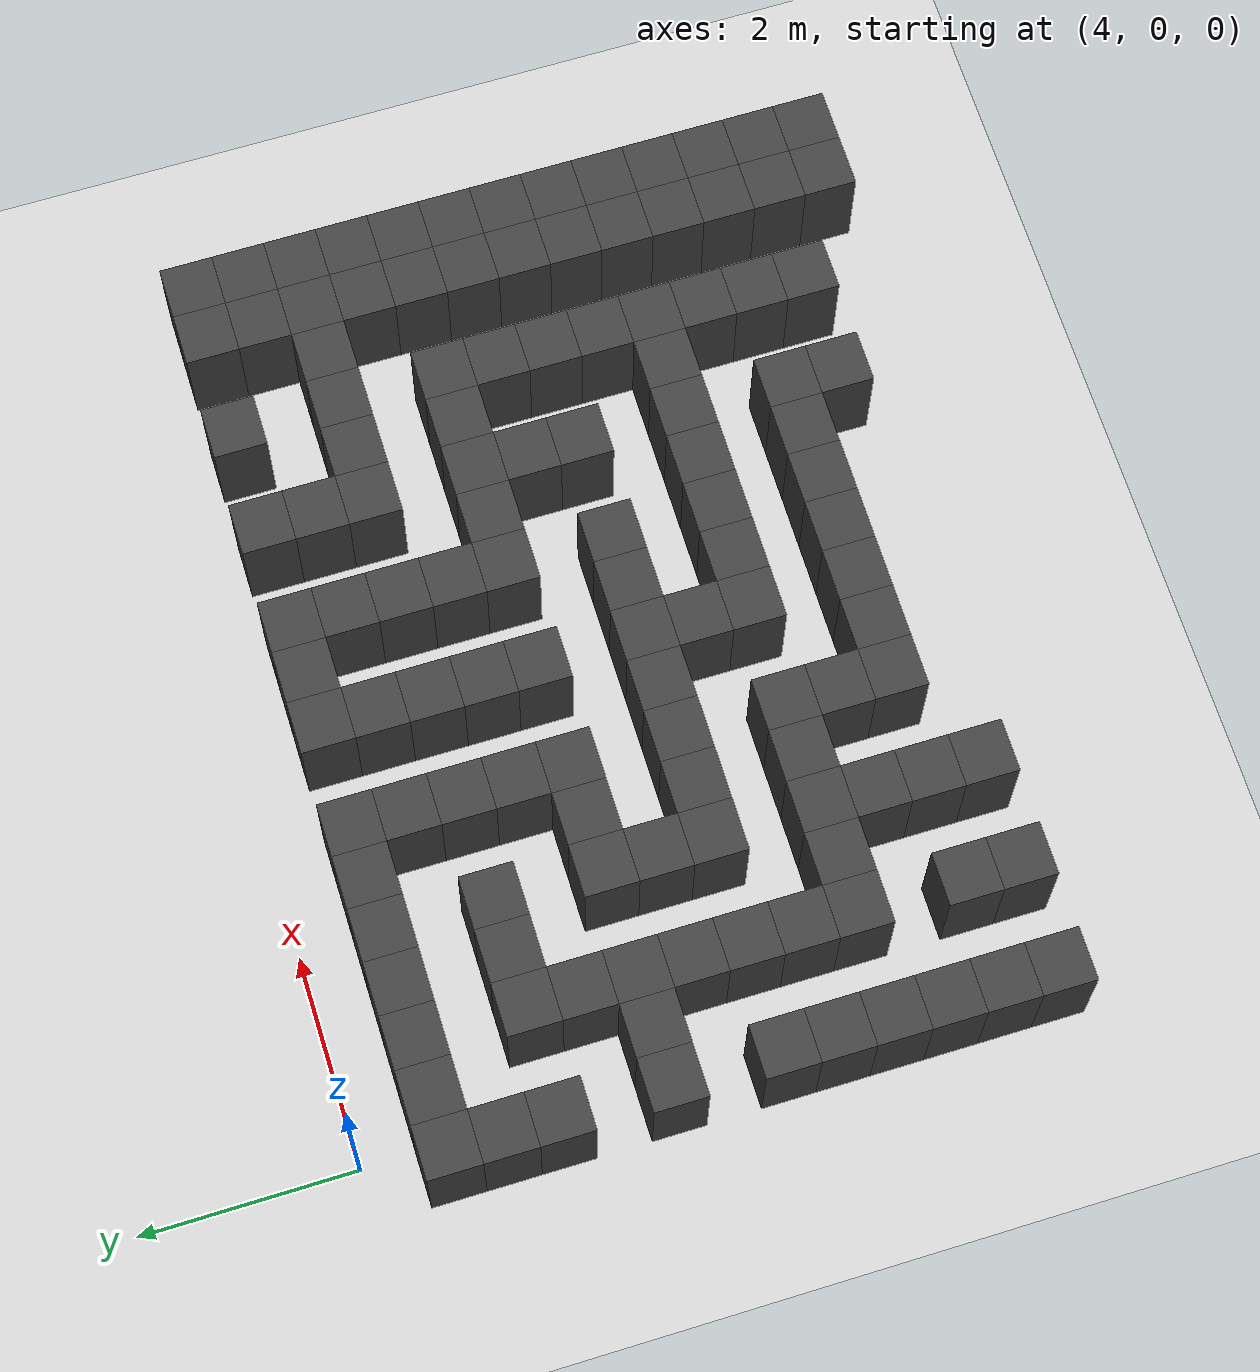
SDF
<sdf version="1.7">
 <world name="map_19815">
  <model name="ground_plane">
   <static>true</static>
   <link name="link">
    <collision name="collision">
     <geometry><plane><normal>0 0 1</normal><size>200 200</size></plane></geometry>
    </collision>
    <visual name="visual">
     <geometry><plane><normal>0 0 1</normal><size>200 200</size></plane></geometry>
     <material><ambient>0.8 0.8 0.8 1</ambient><diffuse>0.8 0.8 0.8 1</diffuse></material>
    </visual>
   </link>
  </model>
  <model name="maze_environment">
   <static>true</static>
   <link name="wall_699">
    <pose>3.750 -0.750 0.500 0 0 0</pose>
    <collision name="col"><geometry><box><size>0.5 0.5 1.0</size></box></geometry></collision>
    <visual name="vis">
     <geometry><box><size>0.5 0.5 1.0</size></box></geometry>
     <material><ambient>0.15 0.15 0.15 1</ambient><diffuse>0.25 0.25 0.25 1</diffuse></material>
    </visual>
   </link>
   <link name="wall_700">
    <pose>4.250 -0.750 0.500 0 0 0</pose>
    <collision name="col"><geometry><box><size>0.5 0.5 1.0</size></box></geometry></collision>
    <visual name="vis">
     <geometry><box><size>0.5 0.5 1.0</size></box></geometry>
     <material><ambient>0.15 0.15 0.15 1</ambient><diffuse>0.25 0.25 0.25 1</diffuse></material>
    </visual>
   </link>
   <link name="wall_701">
    <pose>4.750 -0.750 0.500 0 0 0</pose>
    <collision name="col"><geometry><box><size>0.5 0.5 1.0</size></box></geometry></collision>
    <visual name="vis">
     <geometry><box><size>0.5 0.5 1.0</size></box></geometry>
     <material><ambient>0.15 0.15 0.15 1</ambient><diffuse>0.25 0.25 0.25 1</diffuse></material>
    </visual>
   </link>
   <link name="wall_702">
    <pose>5.250 -0.750 0.500 0 0 0</pose>
    <collision name="col"><geometry><box><size>0.5 0.5 1.0</size></box></geometry></collision>
    <visual name="vis">
     <geometry><box><size>0.5 0.5 1.0</size></box></geometry>
     <material><ambient>0.15 0.15 0.15 1</ambient><diffuse>0.25 0.25 0.25 1</diffuse></material>
    </visual>
   </link>
   <link name="wall_703">
    <pose>5.750 -0.750 0.500 0 0 0</pose>
    <collision name="col"><geometry><box><size>0.5 0.5 1.0</size></box></geometry></collision>
    <visual name="vis">
     <geometry><box><size>0.5 0.5 1.0</size></box></geometry>
     <material><ambient>0.15 0.15 0.15 1</ambient><diffuse>0.25 0.25 0.25 1</diffuse></material>
    </visual>
   </link>
   <link name="wall_704">
    <pose>6.250 -0.750 0.500 0 0 0</pose>
    <collision name="col"><geometry><box><size>0.5 0.5 1.0</size></box></geometry></collision>
    <visual name="vis">
     <geometry><box><size>0.5 0.5 1.0</size></box></geometry>
     <material><ambient>0.15 0.15 0.15 1</ambient><diffuse>0.25 0.25 0.25 1</diffuse></material>
    </visual>
   </link>
   <link name="wall_705">
    <pose>6.750 -0.750 0.500 0 0 0</pose>
    <collision name="col"><geometry><box><size>0.5 0.5 1.0</size></box></geometry></collision>
    <visual name="vis">
     <geometry><box><size>0.5 0.5 1.0</size></box></geometry>
     <material><ambient>0.15 0.15 0.15 1</ambient><diffuse>0.25 0.25 0.25 1</diffuse></material>
    </visual>
   </link>
   <link name="wall_706">
    <pose>7.750 -0.750 0.500 0 0 0</pose>
    <collision name="col"><geometry><box><size>0.5 0.5 1.0</size></box></geometry></collision>
    <visual name="vis">
     <geometry><box><size>0.5 0.5 1.0</size></box></geometry>
     <material><ambient>0.15 0.15 0.15 1</ambient><diffuse>0.25 0.25 0.25 1</diffuse></material>
    </visual>
   </link>
   <link name="wall_707">
    <pose>8.250 -0.750 0.500 0 0 0</pose>
    <collision name="col"><geometry><box><size>0.5 0.5 1.0</size></box></geometry></collision>
    <visual name="vis">
     <geometry><box><size>0.5 0.5 1.0</size></box></geometry>
     <material><ambient>0.15 0.15 0.15 1</ambient><diffuse>0.25 0.25 0.25 1</diffuse></material>
    </visual>
   </link>
   <link name="wall_708">
    <pose>8.750 -0.750 0.500 0 0 0</pose>
    <collision name="col"><geometry><box><size>0.5 0.5 1.0</size></box></geometry></collision>
    <visual name="vis">
     <geometry><box><size>0.5 0.5 1.0</size></box></geometry>
     <material><ambient>0.15 0.15 0.15 1</ambient><diffuse>0.25 0.25 0.25 1</diffuse></material>
    </visual>
   </link>
   <link name="wall_709">
    <pose>9.750 -0.750 0.500 0 0 0</pose>
    <collision name="col"><geometry><box><size>0.5 0.5 1.0</size></box></geometry></collision>
    <visual name="vis">
     <geometry><box><size>0.5 0.5 1.0</size></box></geometry>
     <material><ambient>0.15 0.15 0.15 1</ambient><diffuse>0.25 0.25 0.25 1</diffuse></material>
    </visual>
   </link>
   <link name="wall_710">
    <pose>10.750 -0.750 0.500 0 0 0</pose>
    <collision name="col"><geometry><box><size>0.5 0.5 1.0</size></box></geometry></collision>
    <visual name="vis">
     <geometry><box><size>0.5 0.5 1.0</size></box></geometry>
     <material><ambient>0.15 0.15 0.15 1</ambient><diffuse>0.25 0.25 0.25 1</diffuse></material>
    </visual>
   </link>
   <link name="wall_711">
    <pose>11.750 -0.750 0.500 0 0 0</pose>
    <collision name="col"><geometry><box><size>0.5 0.5 1.0</size></box></geometry></collision>
    <visual name="vis">
     <geometry><box><size>0.5 0.5 1.0</size></box></geometry>
     <material><ambient>0.15 0.15 0.15 1</ambient><diffuse>0.25 0.25 0.25 1</diffuse></material>
    </visual>
   </link>
   <link name="wall_712">
    <pose>12.250 -0.750 0.500 0 0 0</pose>
    <collision name="col"><geometry><box><size>0.5 0.5 1.0</size></box></geometry></collision>
    <visual name="vis">
     <geometry><box><size>0.5 0.5 1.0</size></box></geometry>
     <material><ambient>0.15 0.15 0.15 1</ambient><diffuse>0.25 0.25 0.25 1</diffuse></material>
    </visual>
   </link>
   <link name="wall_723">
    <pose>3.750 -1.250 0.500 0 0 0</pose>
    <collision name="col"><geometry><box><size>0.5 0.5 1.0</size></box></geometry></collision>
    <visual name="vis">
     <geometry><box><size>0.5 0.5 1.0</size></box></geometry>
     <material><ambient>0.15 0.15 0.15 1</ambient><diffuse>0.25 0.25 0.25 1</diffuse></material>
    </visual>
   </link>
   <link name="wall_724">
    <pose>6.750 -1.250 0.500 0 0 0</pose>
    <collision name="col"><geometry><box><size>0.5 0.5 1.0</size></box></geometry></collision>
    <visual name="vis">
     <geometry><box><size>0.5 0.5 1.0</size></box></geometry>
     <material><ambient>0.15 0.15 0.15 1</ambient><diffuse>0.25 0.25 0.25 1</diffuse></material>
    </visual>
   </link>
   <link name="wall_725">
    <pose>7.750 -1.250 0.500 0 0 0</pose>
    <collision name="col"><geometry><box><size>0.5 0.5 1.0</size></box></geometry></collision>
    <visual name="vis">
     <geometry><box><size>0.5 0.5 1.0</size></box></geometry>
     <material><ambient>0.15 0.15 0.15 1</ambient><diffuse>0.25 0.25 0.25 1</diffuse></material>
    </visual>
   </link>
   <link name="wall_726">
    <pose>8.750 -1.250 0.500 0 0 0</pose>
    <collision name="col"><geometry><box><size>0.5 0.5 1.0</size></box></geometry></collision>
    <visual name="vis">
     <geometry><box><size>0.5 0.5 1.0</size></box></geometry>
     <material><ambient>0.15 0.15 0.15 1</ambient><diffuse>0.25 0.25 0.25 1</diffuse></material>
    </visual>
   </link>
   <link name="wall_727">
    <pose>9.750 -1.250 0.500 0 0 0</pose>
    <collision name="col"><geometry><box><size>0.5 0.5 1.0</size></box></geometry></collision>
    <visual name="vis">
     <geometry><box><size>0.5 0.5 1.0</size></box></geometry>
     <material><ambient>0.15 0.15 0.15 1</ambient><diffuse>0.25 0.25 0.25 1</diffuse></material>
    </visual>
   </link>
   <link name="wall_728">
    <pose>11.750 -1.250 0.500 0 0 0</pose>
    <collision name="col"><geometry><box><size>0.5 0.5 1.0</size></box></geometry></collision>
    <visual name="vis">
     <geometry><box><size>0.5 0.5 1.0</size></box></geometry>
     <material><ambient>0.15 0.15 0.15 1</ambient><diffuse>0.25 0.25 0.25 1</diffuse></material>
    </visual>
   </link>
   <link name="wall_729">
    <pose>12.250 -1.250 0.500 0 0 0</pose>
    <collision name="col"><geometry><box><size>0.5 0.5 1.0</size></box></geometry></collision>
    <visual name="vis">
     <geometry><box><size>0.5 0.5 1.0</size></box></geometry>
     <material><ambient>0.15 0.15 0.15 1</ambient><diffuse>0.25 0.25 0.25 1</diffuse></material>
    </visual>
   </link>
   <link name="wall_753">
    <pose>3.750 -1.750 0.500 0 0 0</pose>
    <collision name="col"><geometry><box><size>0.5 0.5 1.0</size></box></geometry></collision>
    <visual name="vis">
     <geometry><box><size>0.5 0.5 1.0</size></box></geometry>
     <material><ambient>0.15 0.15 0.15 1</ambient><diffuse>0.25 0.25 0.25 1</diffuse></material>
    </visual>
   </link>
   <link name="wall_754">
    <pose>4.750 -1.750 0.500 0 0 0</pose>
    <collision name="col"><geometry><box><size>0.5 0.5 1.0</size></box></geometry></collision>
    <visual name="vis">
     <geometry><box><size>0.5 0.5 1.0</size></box></geometry>
     <material><ambient>0.15 0.15 0.15 1</ambient><diffuse>0.25 0.25 0.25 1</diffuse></material>
    </visual>
   </link>
   <link name="wall_755">
    <pose>5.250 -1.750 0.500 0 0 0</pose>
    <collision name="col"><geometry><box><size>0.5 0.5 1.0</size></box></geometry></collision>
    <visual name="vis">
     <geometry><box><size>0.5 0.5 1.0</size></box></geometry>
     <material><ambient>0.15 0.15 0.15 1</ambient><diffuse>0.25 0.25 0.25 1</diffuse></material>
    </visual>
   </link>
   <link name="wall_756">
    <pose>5.750 -1.750 0.500 0 0 0</pose>
    <collision name="col"><geometry><box><size>0.5 0.5 1.0</size></box></geometry></collision>
    <visual name="vis">
     <geometry><box><size>0.5 0.5 1.0</size></box></geometry>
     <material><ambient>0.15 0.15 0.15 1</ambient><diffuse>0.25 0.25 0.25 1</diffuse></material>
    </visual>
   </link>
   <link name="wall_757">
    <pose>6.750 -1.750 0.500 0 0 0</pose>
    <collision name="col"><geometry><box><size>0.5 0.5 1.0</size></box></geometry></collision>
    <visual name="vis">
     <geometry><box><size>0.5 0.5 1.0</size></box></geometry>
     <material><ambient>0.15 0.15 0.15 1</ambient><diffuse>0.25 0.25 0.25 1</diffuse></material>
    </visual>
   </link>
   <link name="wall_758">
    <pose>7.750 -1.750 0.500 0 0 0</pose>
    <collision name="col"><geometry><box><size>0.5 0.5 1.0</size></box></geometry></collision>
    <visual name="vis">
     <geometry><box><size>0.5 0.5 1.0</size></box></geometry>
     <material><ambient>0.15 0.15 0.15 1</ambient><diffuse>0.25 0.25 0.25 1</diffuse></material>
    </visual>
   </link>
   <link name="wall_759">
    <pose>8.750 -1.750 0.500 0 0 0</pose>
    <collision name="col"><geometry><box><size>0.5 0.5 1.0</size></box></geometry></collision>
    <visual name="vis">
     <geometry><box><size>0.5 0.5 1.0</size></box></geometry>
     <material><ambient>0.15 0.15 0.15 1</ambient><diffuse>0.25 0.25 0.25 1</diffuse></material>
    </visual>
   </link>
   <link name="wall_760">
    <pose>9.750 -1.750 0.500 0 0 0</pose>
    <collision name="col"><geometry><box><size>0.5 0.5 1.0</size></box></geometry></collision>
    <visual name="vis">
     <geometry><box><size>0.5 0.5 1.0</size></box></geometry>
     <material><ambient>0.15 0.15 0.15 1</ambient><diffuse>0.25 0.25 0.25 1</diffuse></material>
    </visual>
   </link>
   <link name="wall_761">
    <pose>10.250 -1.750 0.500 0 0 0</pose>
    <collision name="col"><geometry><box><size>0.5 0.5 1.0</size></box></geometry></collision>
    <visual name="vis">
     <geometry><box><size>0.5 0.5 1.0</size></box></geometry>
     <material><ambient>0.15 0.15 0.15 1</ambient><diffuse>0.25 0.25 0.25 1</diffuse></material>
    </visual>
   </link>
   <link name="wall_762">
    <pose>10.750 -1.750 0.500 0 0 0</pose>
    <collision name="col"><geometry><box><size>0.5 0.5 1.0</size></box></geometry></collision>
    <visual name="vis">
     <geometry><box><size>0.5 0.5 1.0</size></box></geometry>
     <material><ambient>0.15 0.15 0.15 1</ambient><diffuse>0.25 0.25 0.25 1</diffuse></material>
    </visual>
   </link>
   <link name="wall_763">
    <pose>11.250 -1.750 0.500 0 0 0</pose>
    <collision name="col"><geometry><box><size>0.5 0.5 1.0</size></box></geometry></collision>
    <visual name="vis">
     <geometry><box><size>0.5 0.5 1.0</size></box></geometry>
     <material><ambient>0.15 0.15 0.15 1</ambient><diffuse>0.25 0.25 0.25 1</diffuse></material>
    </visual>
   </link>
   <link name="wall_764">
    <pose>11.750 -1.750 0.500 0 0 0</pose>
    <collision name="col"><geometry><box><size>0.5 0.5 1.0</size></box></geometry></collision>
    <visual name="vis">
     <geometry><box><size>0.5 0.5 1.0</size></box></geometry>
     <material><ambient>0.15 0.15 0.15 1</ambient><diffuse>0.25 0.25 0.25 1</diffuse></material>
    </visual>
   </link>
   <link name="wall_765">
    <pose>12.250 -1.750 0.500 0 0 0</pose>
    <collision name="col"><geometry><box><size>0.5 0.5 1.0</size></box></geometry></collision>
    <visual name="vis">
     <geometry><box><size>0.5 0.5 1.0</size></box></geometry>
     <material><ambient>0.15 0.15 0.15 1</ambient><diffuse>0.25 0.25 0.25 1</diffuse></material>
    </visual>
   </link>
   <link name="wall_776">
    <pose>4.750 -2.250 0.500 0 0 0</pose>
    <collision name="col"><geometry><box><size>0.5 0.5 1.0</size></box></geometry></collision>
    <visual name="vis">
     <geometry><box><size>0.5 0.5 1.0</size></box></geometry>
     <material><ambient>0.15 0.15 0.15 1</ambient><diffuse>0.25 0.25 0.25 1</diffuse></material>
    </visual>
   </link>
   <link name="wall_777">
    <pose>6.750 -2.250 0.500 0 0 0</pose>
    <collision name="col"><geometry><box><size>0.5 0.5 1.0</size></box></geometry></collision>
    <visual name="vis">
     <geometry><box><size>0.5 0.5 1.0</size></box></geometry>
     <material><ambient>0.15 0.15 0.15 1</ambient><diffuse>0.25 0.25 0.25 1</diffuse></material>
    </visual>
   </link>
   <link name="wall_778">
    <pose>7.750 -2.250 0.500 0 0 0</pose>
    <collision name="col"><geometry><box><size>0.5 0.5 1.0</size></box></geometry></collision>
    <visual name="vis">
     <geometry><box><size>0.5 0.5 1.0</size></box></geometry>
     <material><ambient>0.15 0.15 0.15 1</ambient><diffuse>0.25 0.25 0.25 1</diffuse></material>
    </visual>
   </link>
   <link name="wall_779">
    <pose>8.750 -2.250 0.500 0 0 0</pose>
    <collision name="col"><geometry><box><size>0.5 0.5 1.0</size></box></geometry></collision>
    <visual name="vis">
     <geometry><box><size>0.5 0.5 1.0</size></box></geometry>
     <material><ambient>0.15 0.15 0.15 1</ambient><diffuse>0.25 0.25 0.25 1</diffuse></material>
    </visual>
   </link>
   <link name="wall_780">
    <pose>11.750 -2.250 0.500 0 0 0</pose>
    <collision name="col"><geometry><box><size>0.5 0.5 1.0</size></box></geometry></collision>
    <visual name="vis">
     <geometry><box><size>0.5 0.5 1.0</size></box></geometry>
     <material><ambient>0.15 0.15 0.15 1</ambient><diffuse>0.25 0.25 0.25 1</diffuse></material>
    </visual>
   </link>
   <link name="wall_781">
    <pose>12.250 -2.250 0.500 0 0 0</pose>
    <collision name="col"><geometry><box><size>0.5 0.5 1.0</size></box></geometry></collision>
    <visual name="vis">
     <geometry><box><size>0.5 0.5 1.0</size></box></geometry>
     <material><ambient>0.15 0.15 0.15 1</ambient><diffuse>0.25 0.25 0.25 1</diffuse></material>
    </visual>
   </link>
   <link name="wall_803">
    <pose>3.750 -2.750 0.500 0 0 0</pose>
    <collision name="col"><geometry><box><size>0.5 0.5 1.0</size></box></geometry></collision>
    <visual name="vis">
     <geometry><box><size>0.5 0.5 1.0</size></box></geometry>
     <material><ambient>0.15 0.15 0.15 1</ambient><diffuse>0.25 0.25 0.25 1</diffuse></material>
    </visual>
   </link>
   <link name="wall_804">
    <pose>4.250 -2.750 0.500 0 0 0</pose>
    <collision name="col"><geometry><box><size>0.5 0.5 1.0</size></box></geometry></collision>
    <visual name="vis">
     <geometry><box><size>0.5 0.5 1.0</size></box></geometry>
     <material><ambient>0.15 0.15 0.15 1</ambient><diffuse>0.25 0.25 0.25 1</diffuse></material>
    </visual>
   </link>
   <link name="wall_805">
    <pose>4.750 -2.750 0.500 0 0 0</pose>
    <collision name="col"><geometry><box><size>0.5 0.5 1.0</size></box></geometry></collision>
    <visual name="vis">
     <geometry><box><size>0.5 0.5 1.0</size></box></geometry>
     <material><ambient>0.15 0.15 0.15 1</ambient><diffuse>0.25 0.25 0.25 1</diffuse></material>
    </visual>
   </link>
   <link name="wall_806">
    <pose>5.750 -2.750 0.500 0 0 0</pose>
    <collision name="col"><geometry><box><size>0.5 0.5 1.0</size></box></geometry></collision>
    <visual name="vis">
     <geometry><box><size>0.5 0.5 1.0</size></box></geometry>
     <material><ambient>0.15 0.15 0.15 1</ambient><diffuse>0.25 0.25 0.25 1</diffuse></material>
    </visual>
   </link>
   <link name="wall_807">
    <pose>6.250 -2.750 0.500 0 0 0</pose>
    <collision name="col"><geometry><box><size>0.5 0.5 1.0</size></box></geometry></collision>
    <visual name="vis">
     <geometry><box><size>0.5 0.5 1.0</size></box></geometry>
     <material><ambient>0.15 0.15 0.15 1</ambient><diffuse>0.25 0.25 0.25 1</diffuse></material>
    </visual>
   </link>
   <link name="wall_808">
    <pose>6.750 -2.750 0.500 0 0 0</pose>
    <collision name="col"><geometry><box><size>0.5 0.5 1.0</size></box></geometry></collision>
    <visual name="vis">
     <geometry><box><size>0.5 0.5 1.0</size></box></geometry>
     <material><ambient>0.15 0.15 0.15 1</ambient><diffuse>0.25 0.25 0.25 1</diffuse></material>
    </visual>
   </link>
   <link name="wall_809">
    <pose>7.750 -2.750 0.500 0 0 0</pose>
    <collision name="col"><geometry><box><size>0.5 0.5 1.0</size></box></geometry></collision>
    <visual name="vis">
     <geometry><box><size>0.5 0.5 1.0</size></box></geometry>
     <material><ambient>0.15 0.15 0.15 1</ambient><diffuse>0.25 0.25 0.25 1</diffuse></material>
    </visual>
   </link>
   <link name="wall_810">
    <pose>8.750 -2.750 0.500 0 0 0</pose>
    <collision name="col"><geometry><box><size>0.5 0.5 1.0</size></box></geometry></collision>
    <visual name="vis">
     <geometry><box><size>0.5 0.5 1.0</size></box></geometry>
     <material><ambient>0.15 0.15 0.15 1</ambient><diffuse>0.25 0.25 0.25 1</diffuse></material>
    </visual>
   </link>
   <link name="wall_811">
    <pose>9.250 -2.750 0.500 0 0 0</pose>
    <collision name="col"><geometry><box><size>0.5 0.5 1.0</size></box></geometry></collision>
    <visual name="vis">
     <geometry><box><size>0.5 0.5 1.0</size></box></geometry>
     <material><ambient>0.15 0.15 0.15 1</ambient><diffuse>0.25 0.25 0.25 1</diffuse></material>
    </visual>
   </link>
   <link name="wall_812">
    <pose>9.750 -2.750 0.500 0 0 0</pose>
    <collision name="col"><geometry><box><size>0.5 0.5 1.0</size></box></geometry></collision>
    <visual name="vis">
     <geometry><box><size>0.5 0.5 1.0</size></box></geometry>
     <material><ambient>0.15 0.15 0.15 1</ambient><diffuse>0.25 0.25 0.25 1</diffuse></material>
    </visual>
   </link>
   <link name="wall_813">
    <pose>10.250 -2.750 0.500 0 0 0</pose>
    <collision name="col"><geometry><box><size>0.5 0.5 1.0</size></box></geometry></collision>
    <visual name="vis">
     <geometry><box><size>0.5 0.5 1.0</size></box></geometry>
     <material><ambient>0.15 0.15 0.15 1</ambient><diffuse>0.25 0.25 0.25 1</diffuse></material>
    </visual>
   </link>
   <link name="wall_814">
    <pose>10.750 -2.750 0.500 0 0 0</pose>
    <collision name="col"><geometry><box><size>0.5 0.5 1.0</size></box></geometry></collision>
    <visual name="vis">
     <geometry><box><size>0.5 0.5 1.0</size></box></geometry>
     <material><ambient>0.15 0.15 0.15 1</ambient><diffuse>0.25 0.25 0.25 1</diffuse></material>
    </visual>
   </link>
   <link name="wall_815">
    <pose>11.750 -2.750 0.500 0 0 0</pose>
    <collision name="col"><geometry><box><size>0.5 0.5 1.0</size></box></geometry></collision>
    <visual name="vis">
     <geometry><box><size>0.5 0.5 1.0</size></box></geometry>
     <material><ambient>0.15 0.15 0.15 1</ambient><diffuse>0.25 0.25 0.25 1</diffuse></material>
    </visual>
   </link>
   <link name="wall_816">
    <pose>12.250 -2.750 0.500 0 0 0</pose>
    <collision name="col"><geometry><box><size>0.5 0.5 1.0</size></box></geometry></collision>
    <visual name="vis">
     <geometry><box><size>0.5 0.5 1.0</size></box></geometry>
     <material><ambient>0.15 0.15 0.15 1</ambient><diffuse>0.25 0.25 0.25 1</diffuse></material>
    </visual>
   </link>
   <link name="wall_830">
    <pose>4.750 -3.250 0.500 0 0 0</pose>
    <collision name="col"><geometry><box><size>0.5 0.5 1.0</size></box></geometry></collision>
    <visual name="vis">
     <geometry><box><size>0.5 0.5 1.0</size></box></geometry>
     <material><ambient>0.15 0.15 0.15 1</ambient><diffuse>0.25 0.25 0.25 1</diffuse></material>
    </visual>
   </link>
   <link name="wall_831">
    <pose>5.750 -3.250 0.500 0 0 0</pose>
    <collision name="col"><geometry><box><size>0.5 0.5 1.0</size></box></geometry></collision>
    <visual name="vis">
     <geometry><box><size>0.5 0.5 1.0</size></box></geometry>
     <material><ambient>0.15 0.15 0.15 1</ambient><diffuse>0.25 0.25 0.25 1</diffuse></material>
    </visual>
   </link>
   <link name="wall_832">
    <pose>9.750 -3.250 0.500 0 0 0</pose>
    <collision name="col"><geometry><box><size>0.5 0.5 1.0</size></box></geometry></collision>
    <visual name="vis">
     <geometry><box><size>0.5 0.5 1.0</size></box></geometry>
     <material><ambient>0.15 0.15 0.15 1</ambient><diffuse>0.25 0.25 0.25 1</diffuse></material>
    </visual>
   </link>
   <link name="wall_833">
    <pose>10.750 -3.250 0.500 0 0 0</pose>
    <collision name="col"><geometry><box><size>0.5 0.5 1.0</size></box></geometry></collision>
    <visual name="vis">
     <geometry><box><size>0.5 0.5 1.0</size></box></geometry>
     <material><ambient>0.15 0.15 0.15 1</ambient><diffuse>0.25 0.25 0.25 1</diffuse></material>
    </visual>
   </link>
   <link name="wall_834">
    <pose>11.750 -3.250 0.500 0 0 0</pose>
    <collision name="col"><geometry><box><size>0.5 0.5 1.0</size></box></geometry></collision>
    <visual name="vis">
     <geometry><box><size>0.5 0.5 1.0</size></box></geometry>
     <material><ambient>0.15 0.15 0.15 1</ambient><diffuse>0.25 0.25 0.25 1</diffuse></material>
    </visual>
   </link>
   <link name="wall_835">
    <pose>12.250 -3.250 0.500 0 0 0</pose>
    <collision name="col"><geometry><box><size>0.5 0.5 1.0</size></box></geometry></collision>
    <visual name="vis">
     <geometry><box><size>0.5 0.5 1.0</size></box></geometry>
     <material><ambient>0.15 0.15 0.15 1</ambient><diffuse>0.25 0.25 0.25 1</diffuse></material>
    </visual>
   </link>
   <link name="wall_858">
    <pose>3.750 -3.750 0.500 0 0 0</pose>
    <collision name="col"><geometry><box><size>0.5 0.5 1.0</size></box></geometry></collision>
    <visual name="vis">
     <geometry><box><size>0.5 0.5 1.0</size></box></geometry>
     <material><ambient>0.15 0.15 0.15 1</ambient><diffuse>0.25 0.25 0.25 1</diffuse></material>
    </visual>
   </link>
   <link name="wall_859">
    <pose>4.750 -3.750 0.500 0 0 0</pose>
    <collision name="col"><geometry><box><size>0.5 0.5 1.0</size></box></geometry></collision>
    <visual name="vis">
     <geometry><box><size>0.5 0.5 1.0</size></box></geometry>
     <material><ambient>0.15 0.15 0.15 1</ambient><diffuse>0.25 0.25 0.25 1</diffuse></material>
    </visual>
   </link>
   <link name="wall_860">
    <pose>5.750 -3.750 0.500 0 0 0</pose>
    <collision name="col"><geometry><box><size>0.5 0.5 1.0</size></box></geometry></collision>
    <visual name="vis">
     <geometry><box><size>0.5 0.5 1.0</size></box></geometry>
     <material><ambient>0.15 0.15 0.15 1</ambient><diffuse>0.25 0.25 0.25 1</diffuse></material>
    </visual>
   </link>
   <link name="wall_861">
    <pose>6.250 -3.750 0.500 0 0 0</pose>
    <collision name="col"><geometry><box><size>0.5 0.5 1.0</size></box></geometry></collision>
    <visual name="vis">
     <geometry><box><size>0.5 0.5 1.0</size></box></geometry>
     <material><ambient>0.15 0.15 0.15 1</ambient><diffuse>0.25 0.25 0.25 1</diffuse></material>
    </visual>
   </link>
   <link name="wall_862">
    <pose>6.750 -3.750 0.500 0 0 0</pose>
    <collision name="col"><geometry><box><size>0.5 0.5 1.0</size></box></geometry></collision>
    <visual name="vis">
     <geometry><box><size>0.5 0.5 1.0</size></box></geometry>
     <material><ambient>0.15 0.15 0.15 1</ambient><diffuse>0.25 0.25 0.25 1</diffuse></material>
    </visual>
   </link>
   <link name="wall_863">
    <pose>7.250 -3.750 0.500 0 0 0</pose>
    <collision name="col"><geometry><box><size>0.5 0.5 1.0</size></box></geometry></collision>
    <visual name="vis">
     <geometry><box><size>0.5 0.5 1.0</size></box></geometry>
     <material><ambient>0.15 0.15 0.15 1</ambient><diffuse>0.25 0.25 0.25 1</diffuse></material>
    </visual>
   </link>
   <link name="wall_864">
    <pose>7.750 -3.750 0.500 0 0 0</pose>
    <collision name="col"><geometry><box><size>0.5 0.5 1.0</size></box></geometry></collision>
    <visual name="vis">
     <geometry><box><size>0.5 0.5 1.0</size></box></geometry>
     <material><ambient>0.15 0.15 0.15 1</ambient><diffuse>0.25 0.25 0.25 1</diffuse></material>
    </visual>
   </link>
   <link name="wall_865">
    <pose>8.250 -3.750 0.500 0 0 0</pose>
    <collision name="col"><geometry><box><size>0.5 0.5 1.0</size></box></geometry></collision>
    <visual name="vis">
     <geometry><box><size>0.5 0.5 1.0</size></box></geometry>
     <material><ambient>0.15 0.15 0.15 1</ambient><diffuse>0.25 0.25 0.25 1</diffuse></material>
    </visual>
   </link>
   <link name="wall_866">
    <pose>8.750 -3.750 0.500 0 0 0</pose>
    <collision name="col"><geometry><box><size>0.5 0.5 1.0</size></box></geometry></collision>
    <visual name="vis">
     <geometry><box><size>0.5 0.5 1.0</size></box></geometry>
     <material><ambient>0.15 0.15 0.15 1</ambient><diffuse>0.25 0.25 0.25 1</diffuse></material>
    </visual>
   </link>
   <link name="wall_867">
    <pose>9.750 -3.750 0.500 0 0 0</pose>
    <collision name="col"><geometry><box><size>0.5 0.5 1.0</size></box></geometry></collision>
    <visual name="vis">
     <geometry><box><size>0.5 0.5 1.0</size></box></geometry>
     <material><ambient>0.15 0.15 0.15 1</ambient><diffuse>0.25 0.25 0.25 1</diffuse></material>
    </visual>
   </link>
   <link name="wall_868">
    <pose>10.750 -3.750 0.500 0 0 0</pose>
    <collision name="col"><geometry><box><size>0.5 0.5 1.0</size></box></geometry></collision>
    <visual name="vis">
     <geometry><box><size>0.5 0.5 1.0</size></box></geometry>
     <material><ambient>0.15 0.15 0.15 1</ambient><diffuse>0.25 0.25 0.25 1</diffuse></material>
    </visual>
   </link>
   <link name="wall_869">
    <pose>11.750 -3.750 0.500 0 0 0</pose>
    <collision name="col"><geometry><box><size>0.5 0.5 1.0</size></box></geometry></collision>
    <visual name="vis">
     <geometry><box><size>0.5 0.5 1.0</size></box></geometry>
     <material><ambient>0.15 0.15 0.15 1</ambient><diffuse>0.25 0.25 0.25 1</diffuse></material>
    </visual>
   </link>
   <link name="wall_870">
    <pose>12.250 -3.750 0.500 0 0 0</pose>
    <collision name="col"><geometry><box><size>0.5 0.5 1.0</size></box></geometry></collision>
    <visual name="vis">
     <geometry><box><size>0.5 0.5 1.0</size></box></geometry>
     <material><ambient>0.15 0.15 0.15 1</ambient><diffuse>0.25 0.25 0.25 1</diffuse></material>
    </visual>
   </link>
   <link name="wall_880">
    <pose>3.750 -4.250 0.500 0 0 0</pose>
    <collision name="col"><geometry><box><size>0.5 0.5 1.0</size></box></geometry></collision>
    <visual name="vis">
     <geometry><box><size>0.5 0.5 1.0</size></box></geometry>
     <material><ambient>0.15 0.15 0.15 1</ambient><diffuse>0.25 0.25 0.25 1</diffuse></material>
    </visual>
   </link>
   <link name="wall_881">
    <pose>4.750 -4.250 0.500 0 0 0</pose>
    <collision name="col"><geometry><box><size>0.5 0.5 1.0</size></box></geometry></collision>
    <visual name="vis">
     <geometry><box><size>0.5 0.5 1.0</size></box></geometry>
     <material><ambient>0.15 0.15 0.15 1</ambient><diffuse>0.25 0.25 0.25 1</diffuse></material>
    </visual>
   </link>
   <link name="wall_882">
    <pose>7.750 -4.250 0.500 0 0 0</pose>
    <collision name="col"><geometry><box><size>0.5 0.5 1.0</size></box></geometry></collision>
    <visual name="vis">
     <geometry><box><size>0.5 0.5 1.0</size></box></geometry>
     <material><ambient>0.15 0.15 0.15 1</ambient><diffuse>0.25 0.25 0.25 1</diffuse></material>
    </visual>
   </link>
   <link name="wall_883">
    <pose>10.750 -4.250 0.500 0 0 0</pose>
    <collision name="col"><geometry><box><size>0.5 0.5 1.0</size></box></geometry></collision>
    <visual name="vis">
     <geometry><box><size>0.5 0.5 1.0</size></box></geometry>
     <material><ambient>0.15 0.15 0.15 1</ambient><diffuse>0.25 0.25 0.25 1</diffuse></material>
    </visual>
   </link>
   <link name="wall_884">
    <pose>11.750 -4.250 0.500 0 0 0</pose>
    <collision name="col"><geometry><box><size>0.5 0.5 1.0</size></box></geometry></collision>
    <visual name="vis">
     <geometry><box><size>0.5 0.5 1.0</size></box></geometry>
     <material><ambient>0.15 0.15 0.15 1</ambient><diffuse>0.25 0.25 0.25 1</diffuse></material>
    </visual>
   </link>
   <link name="wall_885">
    <pose>12.250 -4.250 0.500 0 0 0</pose>
    <collision name="col"><geometry><box><size>0.5 0.5 1.0</size></box></geometry></collision>
    <visual name="vis">
     <geometry><box><size>0.5 0.5 1.0</size></box></geometry>
     <material><ambient>0.15 0.15 0.15 1</ambient><diffuse>0.25 0.25 0.25 1</diffuse></material>
    </visual>
   </link>
   <link name="wall_909">
    <pose>3.750 -4.750 0.500 0 0 0</pose>
    <collision name="col"><geometry><box><size>0.5 0.5 1.0</size></box></geometry></collision>
    <visual name="vis">
     <geometry><box><size>0.5 0.5 1.0</size></box></geometry>
     <material><ambient>0.15 0.15 0.15 1</ambient><diffuse>0.25 0.25 0.25 1</diffuse></material>
    </visual>
   </link>
   <link name="wall_910">
    <pose>4.750 -4.750 0.500 0 0 0</pose>
    <collision name="col"><geometry><box><size>0.5 0.5 1.0</size></box></geometry></collision>
    <visual name="vis">
     <geometry><box><size>0.5 0.5 1.0</size></box></geometry>
     <material><ambient>0.15 0.15 0.15 1</ambient><diffuse>0.25 0.25 0.25 1</diffuse></material>
    </visual>
   </link>
   <link name="wall_911">
    <pose>5.250 -4.750 0.500 0 0 0</pose>
    <collision name="col"><geometry><box><size>0.5 0.5 1.0</size></box></geometry></collision>
    <visual name="vis">
     <geometry><box><size>0.5 0.5 1.0</size></box></geometry>
     <material><ambient>0.15 0.15 0.15 1</ambient><diffuse>0.25 0.25 0.25 1</diffuse></material>
    </visual>
   </link>
   <link name="wall_912">
    <pose>5.750 -4.750 0.500 0 0 0</pose>
    <collision name="col"><geometry><box><size>0.5 0.5 1.0</size></box></geometry></collision>
    <visual name="vis">
     <geometry><box><size>0.5 0.5 1.0</size></box></geometry>
     <material><ambient>0.15 0.15 0.15 1</ambient><diffuse>0.25 0.25 0.25 1</diffuse></material>
    </visual>
   </link>
   <link name="wall_913">
    <pose>6.250 -4.750 0.500 0 0 0</pose>
    <collision name="col"><geometry><box><size>0.5 0.5 1.0</size></box></geometry></collision>
    <visual name="vis">
     <geometry><box><size>0.5 0.5 1.0</size></box></geometry>
     <material><ambient>0.15 0.15 0.15 1</ambient><diffuse>0.25 0.25 0.25 1</diffuse></material>
    </visual>
   </link>
   <link name="wall_914">
    <pose>6.750 -4.750 0.500 0 0 0</pose>
    <collision name="col"><geometry><box><size>0.5 0.5 1.0</size></box></geometry></collision>
    <visual name="vis">
     <geometry><box><size>0.5 0.5 1.0</size></box></geometry>
     <material><ambient>0.15 0.15 0.15 1</ambient><diffuse>0.25 0.25 0.25 1</diffuse></material>
    </visual>
   </link>
   <link name="wall_915">
    <pose>7.750 -4.750 0.500 0 0 0</pose>
    <collision name="col"><geometry><box><size>0.5 0.5 1.0</size></box></geometry></collision>
    <visual name="vis">
     <geometry><box><size>0.5 0.5 1.0</size></box></geometry>
     <material><ambient>0.15 0.15 0.15 1</ambient><diffuse>0.25 0.25 0.25 1</diffuse></material>
    </visual>
   </link>
   <link name="wall_916">
    <pose>8.250 -4.750 0.500 0 0 0</pose>
    <collision name="col"><geometry><box><size>0.5 0.5 1.0</size></box></geometry></collision>
    <visual name="vis">
     <geometry><box><size>0.5 0.5 1.0</size></box></geometry>
     <material><ambient>0.15 0.15 0.15 1</ambient><diffuse>0.25 0.25 0.25 1</diffuse></material>
    </visual>
   </link>
   <link name="wall_917">
    <pose>8.750 -4.750 0.500 0 0 0</pose>
    <collision name="col"><geometry><box><size>0.5 0.5 1.0</size></box></geometry></collision>
    <visual name="vis">
     <geometry><box><size>0.5 0.5 1.0</size></box></geometry>
     <material><ambient>0.15 0.15 0.15 1</ambient><diffuse>0.25 0.25 0.25 1</diffuse></material>
    </visual>
   </link>
   <link name="wall_918">
    <pose>9.250 -4.750 0.500 0 0 0</pose>
    <collision name="col"><geometry><box><size>0.5 0.5 1.0</size></box></geometry></collision>
    <visual name="vis">
     <geometry><box><size>0.5 0.5 1.0</size></box></geometry>
     <material><ambient>0.15 0.15 0.15 1</ambient><diffuse>0.25 0.25 0.25 1</diffuse></material>
    </visual>
   </link>
   <link name="wall_919">
    <pose>9.750 -4.750 0.500 0 0 0</pose>
    <collision name="col"><geometry><box><size>0.5 0.5 1.0</size></box></geometry></collision>
    <visual name="vis">
     <geometry><box><size>0.5 0.5 1.0</size></box></geometry>
     <material><ambient>0.15 0.15 0.15 1</ambient><diffuse>0.25 0.25 0.25 1</diffuse></material>
    </visual>
   </link>
   <link name="wall_920">
    <pose>10.250 -4.750 0.500 0 0 0</pose>
    <collision name="col"><geometry><box><size>0.5 0.5 1.0</size></box></geometry></collision>
    <visual name="vis">
     <geometry><box><size>0.5 0.5 1.0</size></box></geometry>
     <material><ambient>0.15 0.15 0.15 1</ambient><diffuse>0.25 0.25 0.25 1</diffuse></material>
    </visual>
   </link>
   <link name="wall_921">
    <pose>10.750 -4.750 0.500 0 0 0</pose>
    <collision name="col"><geometry><box><size>0.5 0.5 1.0</size></box></geometry></collision>
    <visual name="vis">
     <geometry><box><size>0.5 0.5 1.0</size></box></geometry>
     <material><ambient>0.15 0.15 0.15 1</ambient><diffuse>0.25 0.25 0.25 1</diffuse></material>
    </visual>
   </link>
   <link name="wall_922">
    <pose>11.750 -4.750 0.500 0 0 0</pose>
    <collision name="col"><geometry><box><size>0.5 0.5 1.0</size></box></geometry></collision>
    <visual name="vis">
     <geometry><box><size>0.5 0.5 1.0</size></box></geometry>
     <material><ambient>0.15 0.15 0.15 1</ambient><diffuse>0.25 0.25 0.25 1</diffuse></material>
    </visual>
   </link>
   <link name="wall_923">
    <pose>12.250 -4.750 0.500 0 0 0</pose>
    <collision name="col"><geometry><box><size>0.5 0.5 1.0</size></box></geometry></collision>
    <visual name="vis">
     <geometry><box><size>0.5 0.5 1.0</size></box></geometry>
     <material><ambient>0.15 0.15 0.15 1</ambient><diffuse>0.25 0.25 0.25 1</diffuse></material>
    </visual>
   </link>
   <link name="wall_931">
    <pose>3.750 -5.250 0.500 0 0 0</pose>
    <collision name="col"><geometry><box><size>0.5 0.5 1.0</size></box></geometry></collision>
    <visual name="vis">
     <geometry><box><size>0.5 0.5 1.0</size></box></geometry>
     <material><ambient>0.15 0.15 0.15 1</ambient><diffuse>0.25 0.25 0.25 1</diffuse></material>
    </visual>
   </link>
   <link name="wall_932">
    <pose>5.750 -5.250 0.500 0 0 0</pose>
    <collision name="col"><geometry><box><size>0.5 0.5 1.0</size></box></geometry></collision>
    <visual name="vis">
     <geometry><box><size>0.5 0.5 1.0</size></box></geometry>
     <material><ambient>0.15 0.15 0.15 1</ambient><diffuse>0.25 0.25 0.25 1</diffuse></material>
    </visual>
   </link>
   <link name="wall_933">
    <pose>6.750 -5.250 0.500 0 0 0</pose>
    <collision name="col"><geometry><box><size>0.5 0.5 1.0</size></box></geometry></collision>
    <visual name="vis">
     <geometry><box><size>0.5 0.5 1.0</size></box></geometry>
     <material><ambient>0.15 0.15 0.15 1</ambient><diffuse>0.25 0.25 0.25 1</diffuse></material>
    </visual>
   </link>
   <link name="wall_934">
    <pose>10.750 -5.250 0.500 0 0 0</pose>
    <collision name="col"><geometry><box><size>0.5 0.5 1.0</size></box></geometry></collision>
    <visual name="vis">
     <geometry><box><size>0.5 0.5 1.0</size></box></geometry>
     <material><ambient>0.15 0.15 0.15 1</ambient><diffuse>0.25 0.25 0.25 1</diffuse></material>
    </visual>
   </link>
   <link name="wall_935">
    <pose>11.750 -5.250 0.500 0 0 0</pose>
    <collision name="col"><geometry><box><size>0.5 0.5 1.0</size></box></geometry></collision>
    <visual name="vis">
     <geometry><box><size>0.5 0.5 1.0</size></box></geometry>
     <material><ambient>0.15 0.15 0.15 1</ambient><diffuse>0.25 0.25 0.25 1</diffuse></material>
    </visual>
   </link>
   <link name="wall_936">
    <pose>12.250 -5.250 0.500 0 0 0</pose>
    <collision name="col"><geometry><box><size>0.5 0.5 1.0</size></box></geometry></collision>
    <visual name="vis">
     <geometry><box><size>0.5 0.5 1.0</size></box></geometry>
     <material><ambient>0.15 0.15 0.15 1</ambient><diffuse>0.25 0.25 0.25 1</diffuse></material>
    </visual>
   </link>
   <link name="wall_960">
    <pose>3.750 -5.750 0.500 0 0 0</pose>
    <collision name="col"><geometry><box><size>0.5 0.5 1.0</size></box></geometry></collision>
    <visual name="vis">
     <geometry><box><size>0.5 0.5 1.0</size></box></geometry>
     <material><ambient>0.15 0.15 0.15 1</ambient><diffuse>0.25 0.25 0.25 1</diffuse></material>
    </visual>
   </link>
   <link name="wall_961">
    <pose>4.750 -5.750 0.500 0 0 0</pose>
    <collision name="col"><geometry><box><size>0.5 0.5 1.0</size></box></geometry></collision>
    <visual name="vis">
     <geometry><box><size>0.5 0.5 1.0</size></box></geometry>
     <material><ambient>0.15 0.15 0.15 1</ambient><diffuse>0.25 0.25 0.25 1</diffuse></material>
    </visual>
   </link>
   <link name="wall_962">
    <pose>5.750 -5.750 0.500 0 0 0</pose>
    <collision name="col"><geometry><box><size>0.5 0.5 1.0</size></box></geometry></collision>
    <visual name="vis">
     <geometry><box><size>0.5 0.5 1.0</size></box></geometry>
     <material><ambient>0.15 0.15 0.15 1</ambient><diffuse>0.25 0.25 0.25 1</diffuse></material>
    </visual>
   </link>
   <link name="wall_963">
    <pose>6.750 -5.750 0.500 0 0 0</pose>
    <collision name="col"><geometry><box><size>0.5 0.5 1.0</size></box></geometry></collision>
    <visual name="vis">
     <geometry><box><size>0.5 0.5 1.0</size></box></geometry>
     <material><ambient>0.15 0.15 0.15 1</ambient><diffuse>0.25 0.25 0.25 1</diffuse></material>
    </visual>
   </link>
   <link name="wall_964">
    <pose>7.250 -5.750 0.500 0 0 0</pose>
    <collision name="col"><geometry><box><size>0.5 0.5 1.0</size></box></geometry></collision>
    <visual name="vis">
     <geometry><box><size>0.5 0.5 1.0</size></box></geometry>
     <material><ambient>0.15 0.15 0.15 1</ambient><diffuse>0.25 0.25 0.25 1</diffuse></material>
    </visual>
   </link>
   <link name="wall_965">
    <pose>7.750 -5.750 0.500 0 0 0</pose>
    <collision name="col"><geometry><box><size>0.5 0.5 1.0</size></box></geometry></collision>
    <visual name="vis">
     <geometry><box><size>0.5 0.5 1.0</size></box></geometry>
     <material><ambient>0.15 0.15 0.15 1</ambient><diffuse>0.25 0.25 0.25 1</diffuse></material>
    </visual>
   </link>
   <link name="wall_966">
    <pose>8.250 -5.750 0.500 0 0 0</pose>
    <collision name="col"><geometry><box><size>0.5 0.5 1.0</size></box></geometry></collision>
    <visual name="vis">
     <geometry><box><size>0.5 0.5 1.0</size></box></geometry>
     <material><ambient>0.15 0.15 0.15 1</ambient><diffuse>0.25 0.25 0.25 1</diffuse></material>
    </visual>
   </link>
   <link name="wall_967">
    <pose>8.750 -5.750 0.500 0 0 0</pose>
    <collision name="col"><geometry><box><size>0.5 0.5 1.0</size></box></geometry></collision>
    <visual name="vis">
     <geometry><box><size>0.5 0.5 1.0</size></box></geometry>
     <material><ambient>0.15 0.15 0.15 1</ambient><diffuse>0.25 0.25 0.25 1</diffuse></material>
    </visual>
   </link>
   <link name="wall_968">
    <pose>9.250 -5.750 0.500 0 0 0</pose>
    <collision name="col"><geometry><box><size>0.5 0.5 1.0</size></box></geometry></collision>
    <visual name="vis">
     <geometry><box><size>0.5 0.5 1.0</size></box></geometry>
     <material><ambient>0.15 0.15 0.15 1</ambient><diffuse>0.25 0.25 0.25 1</diffuse></material>
    </visual>
   </link>
   <link name="wall_969">
    <pose>9.750 -5.750 0.500 0 0 0</pose>
    <collision name="col"><geometry><box><size>0.5 0.5 1.0</size></box></geometry></collision>
    <visual name="vis">
     <geometry><box><size>0.5 0.5 1.0</size></box></geometry>
     <material><ambient>0.15 0.15 0.15 1</ambient><diffuse>0.25 0.25 0.25 1</diffuse></material>
    </visual>
   </link>
   <link name="wall_970">
    <pose>10.750 -5.750 0.500 0 0 0</pose>
    <collision name="col"><geometry><box><size>0.5 0.5 1.0</size></box></geometry></collision>
    <visual name="vis">
     <geometry><box><size>0.5 0.5 1.0</size></box></geometry>
     <material><ambient>0.15 0.15 0.15 1</ambient><diffuse>0.25 0.25 0.25 1</diffuse></material>
    </visual>
   </link>
   <link name="wall_971">
    <pose>11.750 -5.750 0.500 0 0 0</pose>
    <collision name="col"><geometry><box><size>0.5 0.5 1.0</size></box></geometry></collision>
    <visual name="vis">
     <geometry><box><size>0.5 0.5 1.0</size></box></geometry>
     <material><ambient>0.15 0.15 0.15 1</ambient><diffuse>0.25 0.25 0.25 1</diffuse></material>
    </visual>
   </link>
   <link name="wall_972">
    <pose>12.250 -5.750 0.500 0 0 0</pose>
    <collision name="col"><geometry><box><size>0.5 0.5 1.0</size></box></geometry></collision>
    <visual name="vis">
     <geometry><box><size>0.5 0.5 1.0</size></box></geometry>
     <material><ambient>0.15 0.15 0.15 1</ambient><diffuse>0.25 0.25 0.25 1</diffuse></material>
    </visual>
   </link>
   <link name="wall_982">
    <pose>3.750 -6.250 0.500 0 0 0</pose>
    <collision name="col"><geometry><box><size>0.5 0.5 1.0</size></box></geometry></collision>
    <visual name="vis">
     <geometry><box><size>0.5 0.5 1.0</size></box></geometry>
     <material><ambient>0.15 0.15 0.15 1</ambient><diffuse>0.25 0.25 0.25 1</diffuse></material>
    </visual>
   </link>
   <link name="wall_983">
    <pose>4.750 -6.250 0.500 0 0 0</pose>
    <collision name="col"><geometry><box><size>0.5 0.5 1.0</size></box></geometry></collision>
    <visual name="vis">
     <geometry><box><size>0.5 0.5 1.0</size></box></geometry>
     <material><ambient>0.15 0.15 0.15 1</ambient><diffuse>0.25 0.25 0.25 1</diffuse></material>
    </visual>
   </link>
   <link name="wall_984">
    <pose>5.750 -6.250 0.500 0 0 0</pose>
    <collision name="col"><geometry><box><size>0.5 0.5 1.0</size></box></geometry></collision>
    <visual name="vis">
     <geometry><box><size>0.5 0.5 1.0</size></box></geometry>
     <material><ambient>0.15 0.15 0.15 1</ambient><diffuse>0.25 0.25 0.25 1</diffuse></material>
    </visual>
   </link>
   <link name="wall_985">
    <pose>9.750 -6.250 0.500 0 0 0</pose>
    <collision name="col"><geometry><box><size>0.5 0.5 1.0</size></box></geometry></collision>
    <visual name="vis">
     <geometry><box><size>0.5 0.5 1.0</size></box></geometry>
     <material><ambient>0.15 0.15 0.15 1</ambient><diffuse>0.25 0.25 0.25 1</diffuse></material>
    </visual>
   </link>
   <link name="wall_986">
    <pose>10.750 -6.250 0.500 0 0 0</pose>
    <collision name="col"><geometry><box><size>0.5 0.5 1.0</size></box></geometry></collision>
    <visual name="vis">
     <geometry><box><size>0.5 0.5 1.0</size></box></geometry>
     <material><ambient>0.15 0.15 0.15 1</ambient><diffuse>0.25 0.25 0.25 1</diffuse></material>
    </visual>
   </link>
   <link name="wall_987">
    <pose>11.750 -6.250 0.500 0 0 0</pose>
    <collision name="col"><geometry><box><size>0.5 0.5 1.0</size></box></geometry></collision>
    <visual name="vis">
     <geometry><box><size>0.5 0.5 1.0</size></box></geometry>
     <material><ambient>0.15 0.15 0.15 1</ambient><diffuse>0.25 0.25 0.25 1</diffuse></material>
    </visual>
   </link>
   <link name="wall_988">
    <pose>12.250 -6.250 0.500 0 0 0</pose>
    <collision name="col"><geometry><box><size>0.5 0.5 1.0</size></box></geometry></collision>
    <visual name="vis">
     <geometry><box><size>0.5 0.5 1.0</size></box></geometry>
     <material><ambient>0.15 0.15 0.15 1</ambient><diffuse>0.25 0.25 0.25 1</diffuse></material>
    </visual>
   </link>
   <link name="wall_1022">
    <pose>11.750 -6.750 0.500 0 0 0</pose>
    <collision name="col"><geometry><box><size>0.5 0.5 1.0</size></box></geometry></collision>
    <visual name="vis">
     <geometry><box><size>0.5 0.5 1.0</size></box></geometry>
     <material><ambient>0.15 0.15 0.15 1</ambient><diffuse>0.25 0.25 0.25 1</diffuse></material>
    </visual>
   </link>
   <link name="wall_1023">
    <pose>12.250 -6.750 0.500 0 0 0</pose>
    <collision name="col"><geometry><box><size>0.5 0.5 1.0</size></box></geometry></collision>
    <visual name="vis">
     <geometry><box><size>0.5 0.5 1.0</size></box></geometry>
     <material><ambient>0.15 0.15 0.15 1</ambient><diffuse>0.25 0.25 0.25 1</diffuse></material>
    </visual>
   </link>
  </model>
 </world>
</sdf>
